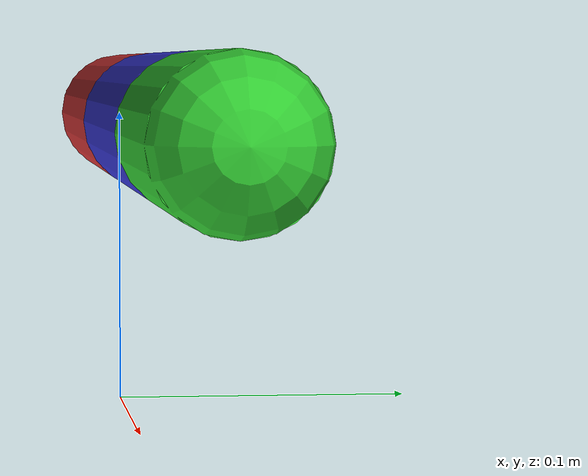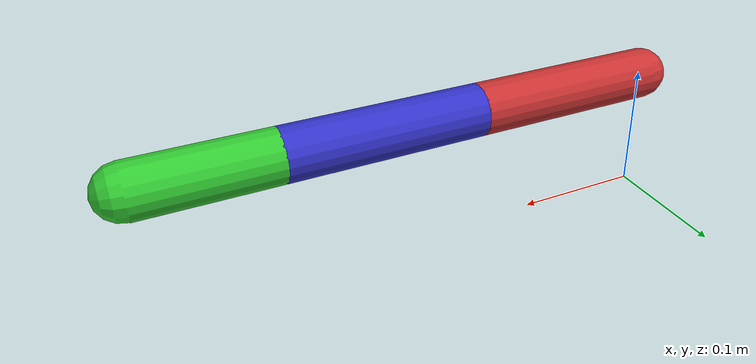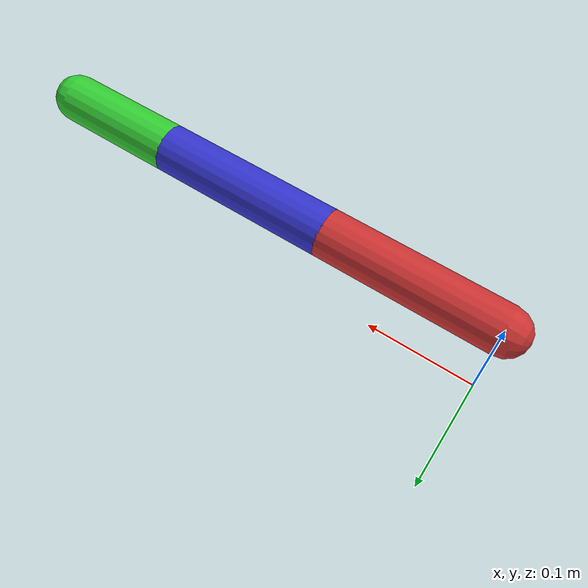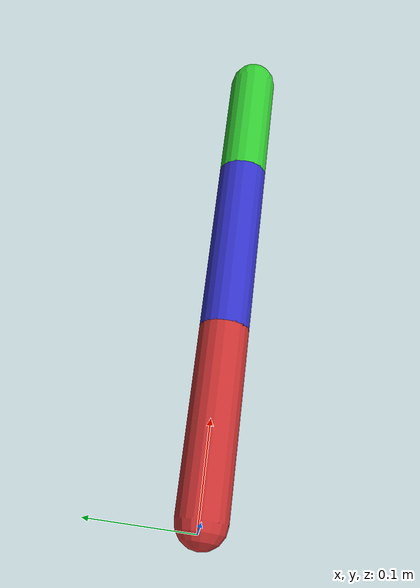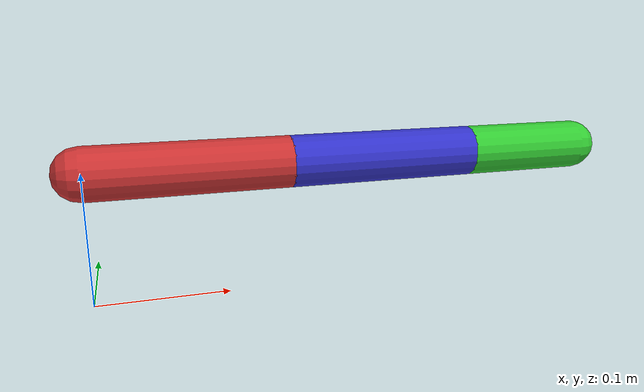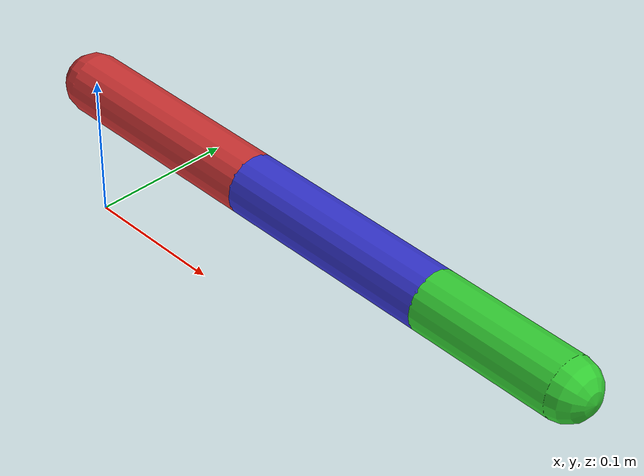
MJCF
<mujoco model="eeg_arm">
  <option timestep="0.01"/>
  <worldbody>
    <body name="base" pos="0 0 0.1">
      <joint name="joint1" type="hinge" axis="0 0 1" />
      <geom size="0.02" fromto="0 0 0 0.15 0 0" type="capsule" rgba="0.8 0.2 0.2 1"/>
      <body name="link2" pos="0.15 0 0">
        <joint name="joint2" type="hinge" axis="0 0 1" />
        <geom size="0.02" fromto="0 0 0 0.15 0 0" type="capsule" rgba="0.2 0.2 0.8 1"/>
        <body name="link3" pos="0.15 0 0">
          <joint name="joint3" type="hinge" axis="0 0 1" />
          <geom size="0.02" fromto="0 0 0 0.1 0 0" type="capsule" rgba="0.2 0.8 0.2 1"/>
          <site name="ee_site" pos="0.1 0 0" size="0.01" rgba="1 1 0 1"/>
        </body>
      </body>
    </body>
  </worldbody>
</mujoco>
